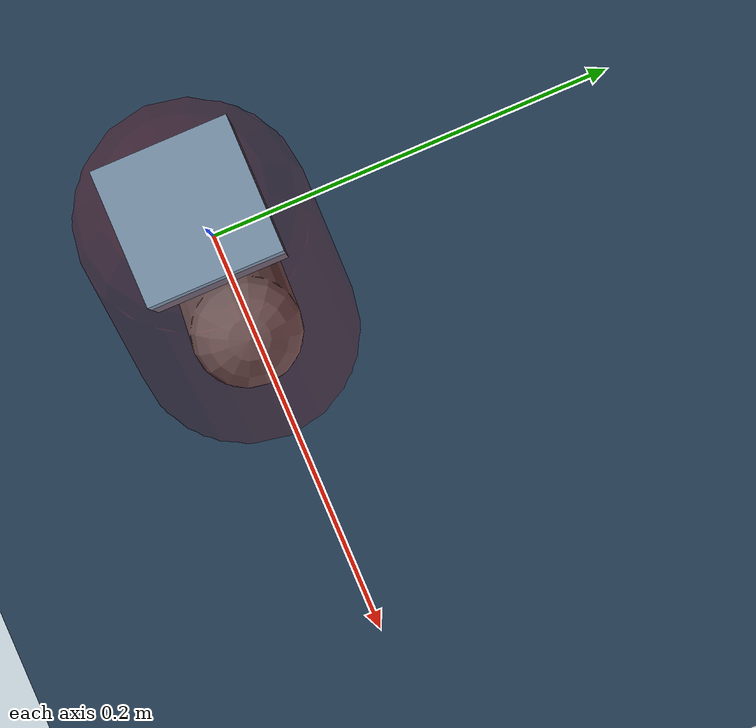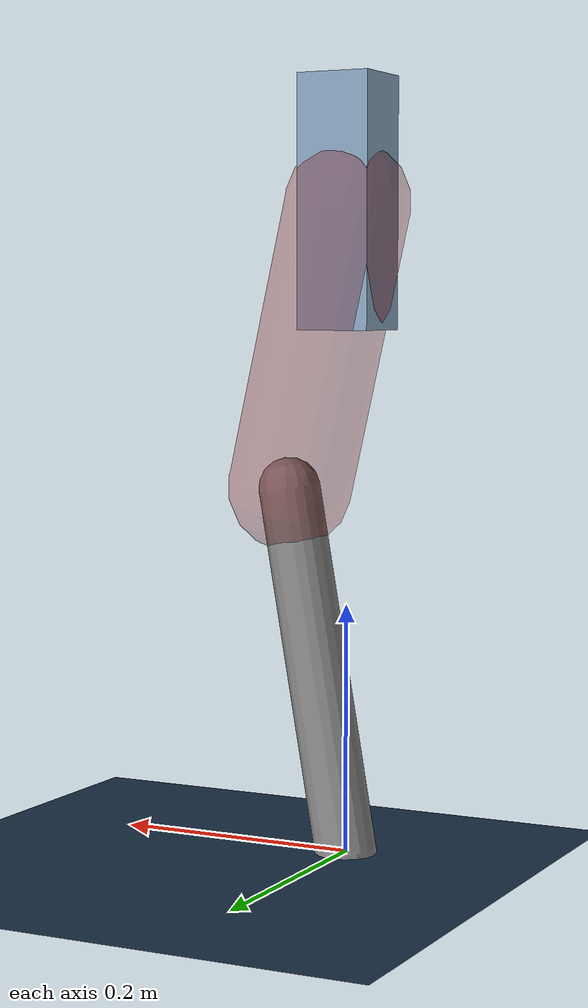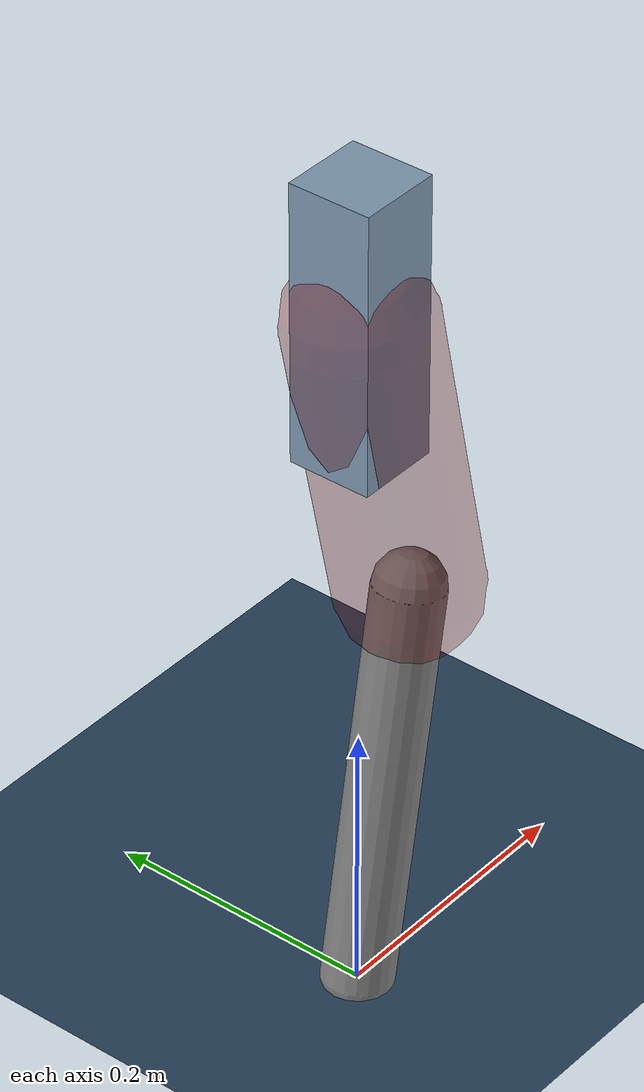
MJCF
<mujoco model="Hopper2D">
	<compiler inertiafromgeom="true" angle="radian" />
	<option timestep="0.001" integrator="implicit" cone="elliptic" solver="Newton" tolerance="1e-10" />

	<default>
		<geom contype="1" conaffinity="1" condim="3" friction="2 0.005 0.0001" solref="0.005 1" />
		<joint limited="true" damping="0.1" />
	</default>

	<asset>
		<texture name="skybox" type="skybox" builtin="gradient" rgb1=".4 .6 .8" rgb2="0 0 0" width="800" height="800" />
		<texture name="grid" type="2d" builtin="checker" rgb1=".1 .2 .3" rgb2=".2 .3 .4" width="300" height="300" mark="edge" markrgb=".2 .3 .4" />
		<material name="ground" texture="grid" texrepeat="1 1" texuniform="true" reflectance="0.1" />
		<material name="leg" rgba="0.5 0.6 0.7 1" />
	</asset>

	<worldbody>

		<geom name="floor" type="plane" size="5 5 0.25" material="ground" />

		<light directional="false" diffuse="0.8 0.8 0.8" specular="0.3 0.3 0.3" pos="0 0 2" dir="0 0 -1" />
		<light mode="targetbodycom" target="base" directional="false" diffuse="0.8 0.8 0.8" specular="0.3 0.3 0.3" pos="0 0 2" dir="0 0 -1" />

		<camera name="fixed" pos="0 -2 1" xyaxes="1 0 0 0 0 1" />
		<camera name="tracking" mode="trackcom" pos="0 -3 1" />

		<body name="root" pos="0 0 0.518746461344355">
			<joint name="slide_x" type="slide" axis="1 0 0" range="-100 100" />
			<joint name="slide_z" type="slide" axis="0 0 1" range="0 10" />

			<body name="base" pos="0 0 0">
				<geom name="torso" type="box" size="0.03 0.03 0.1" mass="3.9989999999999997" material="leg" />

				<body name="link1" pos="0 0 0" euler="0 1.3507823994578538 0">
					<joint type="hinge" axis="0 -1 0" pos="0 0 0" name="hinge1" limited="true" range="-3.14 3.14" stiffness="0" damping="0.1" />
					<geom name="thigh" type="capsule" fromto="0 0 0 0.23272769865059129 0 0" size="0.05" rgba="0.5 0 0 0.3" mass="0.8119920164915373" />

					<body name="link2" pos="0.23272769865059129 0 0" euler="0 0.39244832908912114 0">
						<joint type="hinge" axis="0 -1 0" pos="0 0 0" name="hinge2" limited="true" range="-3.14 3.14" stiffness="0" damping="0.1" />
						<geom name="shank" type="capsule" fromto="0 0 0 0.2960187626937637 0 0" size="0.025" mass="0.480215010155011" />

					</body>
				</body>
			</body>
		</body>
	</worldbody>

	<actuator>
		<motor name="torque1" joint="hinge1" ctrlrange="-120.83748297641715 120.83748297641715" ctrllimited="true" gear="1" />
		<motor name="torque2" joint="hinge2" ctrlrange="-200.77413225748322 200.77413225748322" ctrllimited="true" gear="1" />
	</actuator>
</mujoco>
